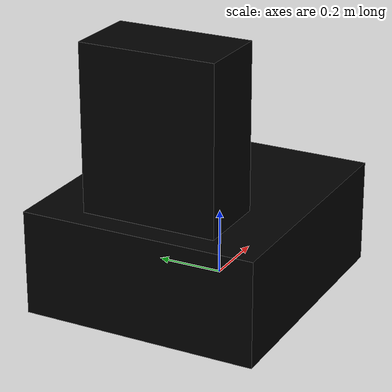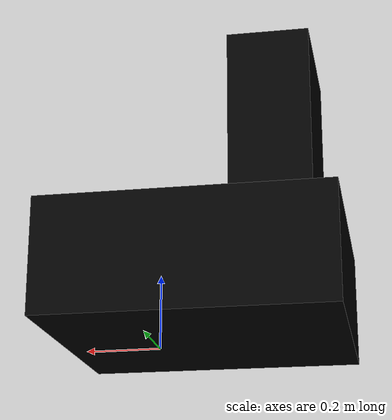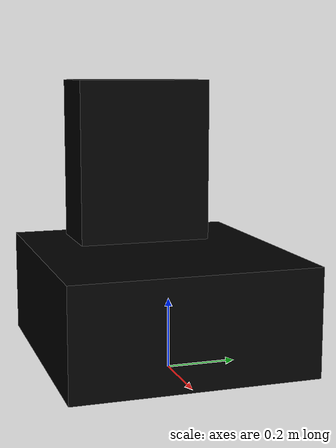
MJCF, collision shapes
<mujoco model="rethink_mount_wheeled">
    <asset>
        <mesh name="pedestal" file="meshes/rethink_mount/pedestal.stl"/>
    </asset>

    <worldbody>
        <body name="base" pos="0 0 0.927">
            <joint name="slide_x" type="slide" pos="0 0 0" axis="1 0 0" damping="1"/>
            <joint name="slide_y" type="slide" pos="0 0 0" axis="0 1 0" damping="1"/>
            <body name="controller_box" pos="0 0 0">
                <inertial diaginertia="1.71363 1.27988 0.809981" mass="46.64" pos="-0.325 0 -0.38"/>
                <geom pos="-0.325 0 -0.38" size="0.11 0.2 0.265" type="box" name="controller_box_col" rgba="0 0 0 0"/>
            </body>
            <body name="pedestal_feet" pos="0 0 0">
                <inertial diaginertia="8.16095 9.59375 15.0785" mass="167.09" pos="-0.1225 0 -0.758"/>
                <geom pos="-0.1225 0 -0.758" size="0.385 0.35 0.155" type="box" name="pedestal_feet_col"
                      rgba="0 0 0 0"/>
            </body>
            <body name="torso" pos="0 0 0">
                <inertial diaginertia="1e-08 1e-08 1e-08" mass="0.0001" pos="0 0 0"/>
                <geom conaffinity="0" contype="0" group="1" pos="0 0 -0.05" size="0.05 0.05 0.05" type="box"
                      name="torso_vis" rgba="0.2 0.2 0.2 0"/>
            </body>
            <body name="pedestal" pos="0 0 0">
                <inertial diaginertia="6.0869 5.81635 4.20915" mass="60.864" pos="0 0 0"
                          quat="0.659267 -0.259505 -0.260945 0.655692"/>
                <geom conaffinity="0" contype="0" group="1" mesh="pedestal" type="mesh" name="pedestal_vis"
                      rgba="0.2 0.2 0.2 1"/>
                <geom pos="-0.02 0 -0.29" rgba="0.2 0.2 0.2 0" size="0.18 0.31" type="cylinder" name="pedestal_col"
                      contype="0" conaffinity="0"/>
            </body>
        </body>
    </worldbody>

    <actuator>
        <motor name="motor_x" joint="slide_x" gear="1" ctrlrange="-10 10" ctrllimited="true"/>
        <motor name="motor_y" joint="slide_y" gear="1" ctrlrange="-10 10" ctrllimited="true"/>
    </actuator>
</mujoco>
